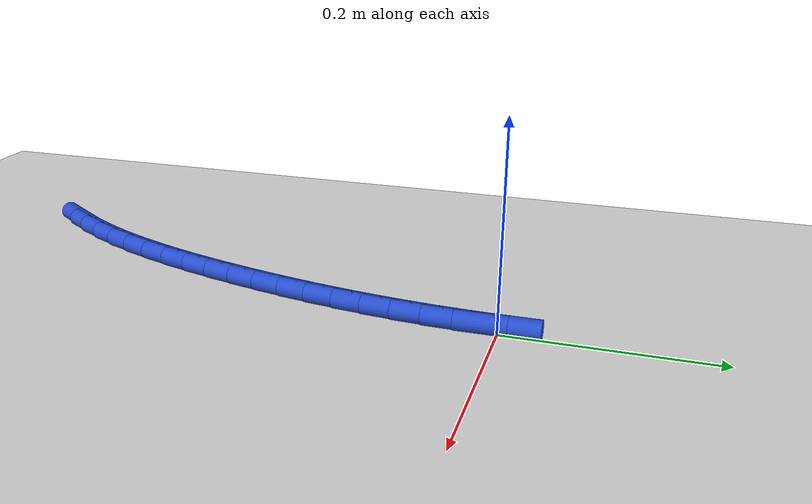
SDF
<sdf version="1.6">
 <world name="default">
  <model name="ground_plane">
   <static>1</static>
   <link name="link">
    <collision name="collision">
     <geometry><plane><normal>0 0 1</normal><size>100 100</size></plane></geometry>
     <surface><friction><ode><mu>100</mu><mu2>50</mu2></ode></friction></surface>
    </collision>
    <visual name="visual">
     <cast_shadows>0</cast_shadows>
     <geometry><plane><normal>0 0 1</normal><size>100 100</size></plane></geometry>
     <material>
      <script><uri>file://media/materials/scripts/gazebo.material</uri><name>Gazebo/WhiteGlow</name></script>
     </material>
    </visual>
   </link>
  </model>
  <model name="line">
   <link name="link_212">
    <pose>-0.14085675687824045 -0.5132500764598836 0.01 0 1.57 0.9731087518903788</pose>
    <collision name="collision">
     <geometry><cylinder><radius>0.01</radius><length>0.08</length></cylinder></geometry>
    </collision>
    <visual name="visual">
     <material>
      <script><name>Gazebo/Blue</name><uri>file://media/materials/scripts/gazebo.material</uri></script>
     </material>
     <geometry><cylinder><radius>0.01</radius><length>0.08</length></cylinder></geometry>
    </visual>
   </link>
   <link name="link_213">
    <pose>-0.12440367977196082 -0.48908094042714106 0.01 0 1.57 1.0358847484948719</pose>
    <collision name="collision">
     <geometry><cylinder><radius>0.01</radius><length>0.08</length></cylinder></geometry>
    </collision>
    <visual name="visual">
     <material>
      <script><name>Gazebo/Blue</name><uri>file://media/materials/scripts/gazebo.material</uri></script>
     </material>
     <geometry><cylinder><radius>0.01</radius><length>0.08</length></cylinder></geometry>
    </visual>
   </link>
   <link name="link_214">
    <pose>-0.10937901427537916 -0.46372430275399285 0.01 0 1.57 1.0921875669410415</pose>
    <collision name="collision">
     <geometry><cylinder><radius>0.01</radius><length>0.08</length></cylinder></geometry>
    </collision>
    <visual name="visual">
     <material>
      <script><name>Gazebo/Blue</name><uri>file://media/materials/scripts/gazebo.material</uri></script>
     </material>
     <geometry><cylinder><radius>0.01</radius><length>0.08</length></cylinder></geometry>
    </visual>
   </link>
   <link name="link_215">
    <pose>-0.09568599628558204 -0.43733289593194485 0.01 0 1.57 1.1423132858768525</pose>
    <collision name="collision">
     <geometry><cylinder><radius>0.01</radius><length>0.08</length></cylinder></geometry>
    </collision>
    <visual name="visual">
     <material>
      <script><name>Gazebo/Blue</name><uri>file://media/materials/scripts/gazebo.material</uri></script>
     </material>
     <geometry><cylinder><radius>0.01</radius><length>0.08</length></cylinder></geometry>
    </visual>
   </link>
   <link name="link_216">
    <pose>-0.08322786169965696 -0.41005945245250486 0.01 0 1.57 1.1866344642289868</pose>
    <collision name="collision">
     <geometry><cylinder><radius>0.01</radius><length>0.08</length></cylinder></geometry>
    </collision>
    <visual name="visual">
     <material>
      <script><name>Gazebo/Blue</name><uri>file://media/materials/scripts/gazebo.material</uri></script>
     </material>
     <geometry><cylinder><radius>0.01</radius><length>0.08</length></cylinder></geometry>
    </visual>
   </link>
   <link name="link_217">
    <pose>-0.07190784641469035 -0.3820567048071786 0.01 0 1.57 1.225547282122433</pose>
    <collision name="collision">
     <geometry><cylinder><radius>0.01</radius><length>0.08</length></cylinder></geometry>
    </collision>
    <visual name="visual">
     <material>
      <script><name>Gazebo/Blue</name><uri>file://media/materials/scripts/gazebo.material</uri></script>
     </material>
     <geometry><cylinder><radius>0.01</radius><length>0.08</length></cylinder></geometry>
    </visual>
   </link>
   <link name="link_218">
    <pose>-0.06162918632776908 -0.3534773854874726 0.01 0 1.57 1.2594347976374354</pose>
    <collision name="collision">
     <geometry><cylinder><radius>0.01</radius><length>0.08</length></cylinder></geometry>
    </collision>
    <visual name="visual">
     <material>
      <script><name>Gazebo/Blue</name><uri>file://media/materials/scripts/gazebo.material</uri></script>
     </material>
     <geometry><cylinder><radius>0.01</radius><length>0.08</length></cylinder></geometry>
    </visual>
   </link>
   <link name="link_219">
    <pose>-0.05229511733597976 -0.3244742269848926 0.01 0 1.57 1.2886427295517662</pose>
    <collision name="collision">
     <geometry><cylinder><radius>0.01</radius><length>0.08</length></cylinder></geometry>
    </collision>
    <visual name="visual">
     <material>
      <script><name>Gazebo/Blue</name><uri>file://media/materials/scripts/gazebo.material</uri></script>
     </material>
     <geometry><cylinder><radius>0.01</radius><length>0.08</length></cylinder></geometry>
    </visual>
   </link>
   <link name="link_220">
    <pose>-0.043808875336409654 -0.29519996179094626 0.01 0 1.57 1.3134661111684167</pose>
    <collision name="collision">
     <geometry><cylinder><radius>0.01</radius><length>0.08</length></cylinder></geometry>
    </collision>
    <visual name="visual">
     <material>
      <script><name>Gazebo/Blue</name><uri>file://media/materials/scripts/gazebo.material</uri></script>
     </material>
     <geometry><cylinder><radius>0.01</radius><length>0.08</length></cylinder></geometry>
    </visual>
   </link>
   <link name="link_221">
    <pose>-0.03607374769670432 -0.2658072531165716 0.01 0 1.57 1.3354112627017538</pose>
    <collision name="collision">
     <geometry><cylinder><radius>0.01</radius><length>0.08</length></cylinder></geometry>
    </collision>
    <visual name="visual">
     <material>
      <script><name>Gazebo/Blue</name><uri>file://media/materials/scripts/gazebo.material</uri></script>
     </material>
     <geometry><cylinder><radius>0.01</radius><length>0.08</length></cylinder></geometry>
    </visual>
   </link>
   <link name="link_222">
    <pose>-0.029022998481637984 -0.2364084148420989 0.01 0 1.57 1.357991560158355</pose>
    <collision name="collision">
     <geometry><cylinder><radius>0.01</radius><length>0.08</length></cylinder></geometry>
    </collision>
    <visual name="visual">
     <material>
      <script><name>Gazebo/Blue</name><uri>file://media/materials/scripts/gazebo.material</uri></script>
     </material>
     <geometry><cylinder><radius>0.01</radius><length>0.08</length></cylinder></geometry>
    </visual>
   </link>
   <link name="link_223">
    <pose>-0.022670192504876455 -0.20700767417469124 0.01 0 1.57 1.3817586454641924</pose>
    <collision name="collision">
     <geometry><cylinder><radius>0.01</radius><length>0.08</length></cylinder></geometry>
    </collision>
    <visual name="visual">
     <material>
      <script><name>Gazebo/Blue</name><uri>file://media/materials/scripts/gazebo.material</uri></script>
     </material>
     <geometry><cylinder><radius>0.01</radius><length>0.08</length></cylinder></geometry>
    </visual>
   </link>
   <link name="link_224">
    <pose>-0.017042199274276203 -0.17759134989410394 0.01 0 1.57 1.4066816529451327</pose>
    <collision name="collision">
     <geometry><cylinder><radius>0.01</radius><length>0.08</length></cylinder></geometry>
    </collision>
    <visual name="visual">
     <material>
      <script><name>Gazebo/Blue</name><uri>file://media/materials/scripts/gazebo.material</uri></script>
     </material>
     <geometry><cylinder><radius>0.01</radius><length>0.08</length></cylinder></geometry>
    </visual>
   </link>
   <link name="link_225">
    <pose>-0.012165888297693153 -0.1481457607800899 0.01 0 1.57 1.4327194616377161</pose>
    <collision name="collision">
     <geometry><cylinder><radius>0.01</radius><length>0.08</length></cylinder></geometry>
    </collision>
    <visual name="visual">
     <material>
      <script><name>Gazebo/Blue</name><uri>file://media/materials/scripts/gazebo.material</uri></script>
     </material>
     <geometry><cylinder><radius>0.01</radius><length>0.08</length></cylinder></geometry>
    </visual>
   </link>
   <link name="link_226">
    <pose>-0.00806812908298343 -0.11865722561240297 0.01 0 1.57 1.4598200883730459</pose>
    <collision name="collision">
     <geometry><cylinder><radius>0.01</radius><length>0.08</length></cylinder></geometry>
    </collision>
    <visual name="visual">
     <material>
      <script><name>Gazebo/Blue</name><uri>file://media/materials/scripts/gazebo.material</uri></script>
     </material>
     <geometry><cylinder><radius>0.01</radius><length>0.08</length></cylinder></geometry>
    </visual>
   </link>
   <link name="link_227">
    <pose>-0.004775791138003136 -0.0891120631707968 0.01 0 1.57 1.4879203067707727</pose>
    <collision name="collision">
     <geometry><cylinder><radius>0.01</radius><length>0.08</length></cylinder></geometry>
    </collision>
    <visual name="visual">
     <material>
      <script><name>Gazebo/Blue</name><uri>file://media/materials/scripts/gazebo.material</uri></script>
     </material>
     <geometry><cylinder><radius>0.01</radius><length>0.08</length></cylinder></geometry>
    </visual>
   </link>
   <link name="link_228">
    <pose>-0.002315743970608347 -0.05949659223502452 0.01 0 1.57 1.516945547231267</pose>
    <collision name="collision">
     <geometry><cylinder><radius>0.01</radius><length>0.08</length></cylinder></geometry>
    </collision>
    <visual name="visual">
     <material>
      <script><name>Gazebo/Blue</name><uri>file://media/materials/scripts/gazebo.material</uri></script>
     </material>
     <geometry><cylinder><radius>0.01</radius><length>0.08</length></cylinder></geometry>
    </visual>
   </link>
   <link name="link_229">
    <pose>-0.0007148570886552925 -0.029797131584841284 0.01 0 1.57 1.5468101257545805</pose>
    <collision name="collision">
     <geometry><cylinder><radius>0.01</radius><length>0.08</length></cylinder></geometry>
    </collision>
    <visual name="visual">
     <material>
      <script><name>Gazebo/Blue</name><uri>file://media/materials/scripts/gazebo.material</uri></script>
     </material>
     <geometry><cylinder><radius>0.01</radius><length>0.08</length></cylinder></geometry>
    </visual>
   </link>
   <link name="link_230">
    <pose>-1.6479873021779667e-17 -1.249000902703301e-16 0.01 0 1.57 -1.564174816996318</pose>
    <collision name="collision">
     <geometry><cylinder><radius>0.01</radius><length>0.08</length></cylinder></geometry>
    </collision>
    <visual name="visual">
     <material>
      <script><name>Gazebo/Blue</name><uri>file://media/materials/scripts/gazebo.material</uri></script>
     </material>
     <geometry><cylinder><radius>0.01</radius><length>0.08</length></cylinder></geometry>
    </visual>
   </link>
  </model>
 </world>
</sdf>
